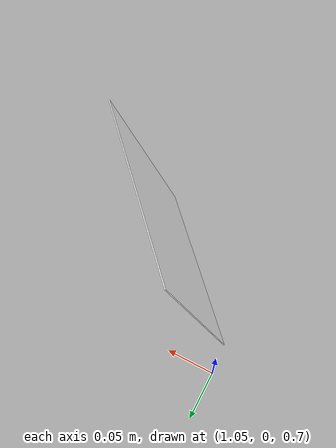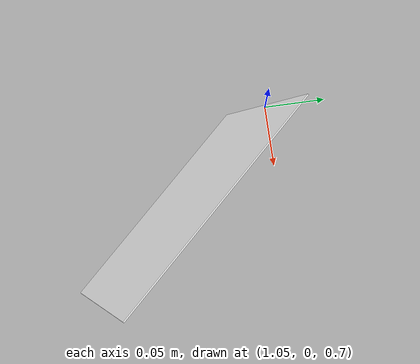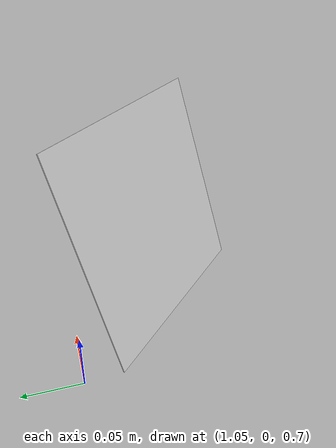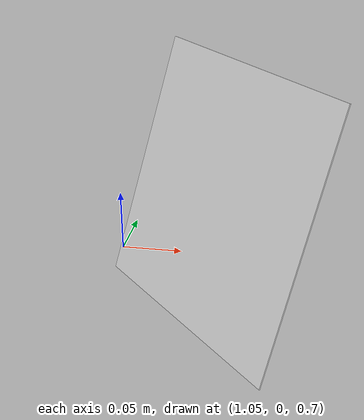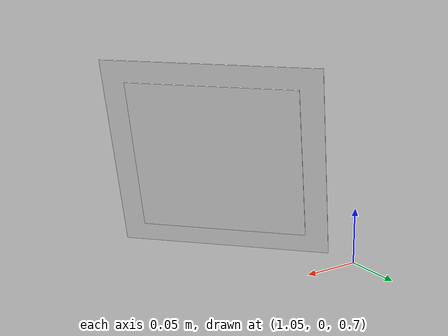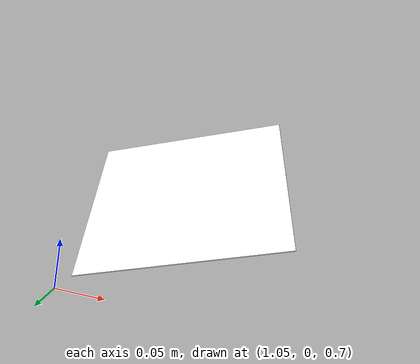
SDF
<?xml version="1.0" encoding="UTF-8"?>
<sdf version="1.9">
  <model name="arucotag">
    <static>true</static>
    <pose>1.14 -0.08 0.79 1.90 0.00 2.33</pose>

    <link name="base">
      <pose>0 0 0.002 0 0 0</pose> <visual name="tag_visual">
        <geometry>
          <box>
            <size>0.15 0.15 0.001</size> </box>
        </geometry>
        <material>
          <ambient>1 1 1 1</ambient>
          <diffuse>1 1 1 1</diffuse>
          <pbr>
            <metal>
              <albedo_map>model://marker_0/ar_tag_0.png</albedo_map>
            </metal>
          </pbr>
        </material>
      </visual>
    </link>

    <link name="background_plate">
      <visual name="white_bg_visual">
        <geometry>
          <box>
            <size>0.19 0.19 0.001</size>
          </box>
        </geometry>
        <material>
          <ambient>1 1 1 1</ambient>
          <diffuse>1 1 1 1</diffuse>
        </material>
      </visual>
    </link>

  </model>
</sdf>
